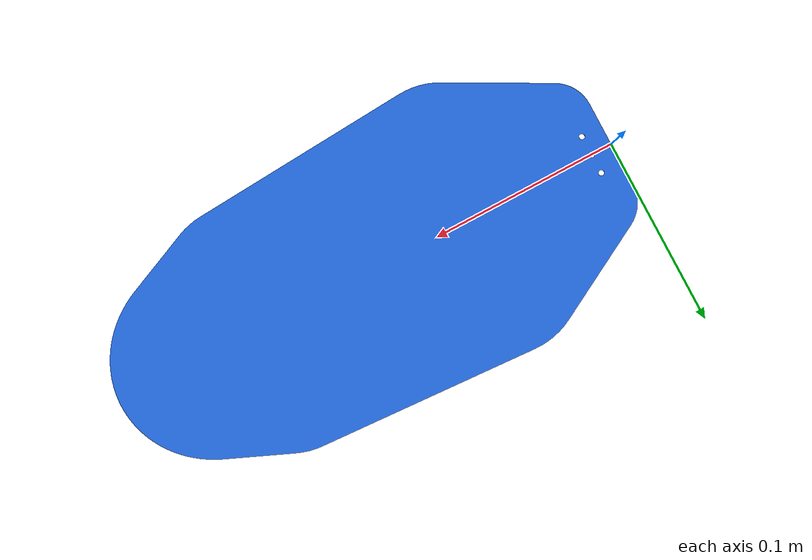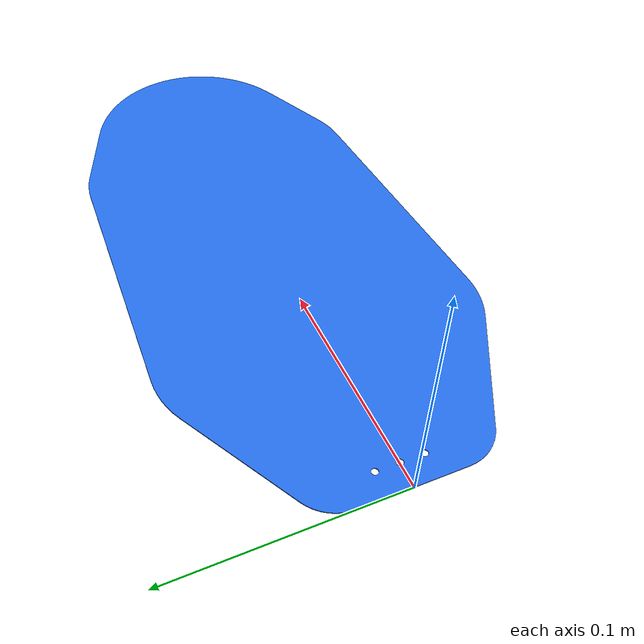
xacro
<?xml version="1.0"?>
<robot name="flipper_demo">

  <!-- Stationary reference -->
  <link name="base_link"/>

  <!-- Yaw pivot -->
  <link name="yaw_link"/>

  <joint name="flipper_yaw_joint" type="revolute">
    <parent link="base_link"/>
    <child link="yaw_link"/>
    <origin xyz="0 0 0" rpy="0 0 0"/>
    <axis xyz="0 0 1"/>
    <limit lower="-3.14159" upper="3.14159"
           effort="10" velocity="2"/>
  </joint>

  <!-- Roll pivot + mesh -->
  <link name="flipper_link">
    <visual>
      <!-- Keep zero if STL origin is your desired pivot -->
      <origin xyz="0 0 0" rpy="0 0 0"/>
      <geometry>
        <mesh filename="package://crab_sim/meshes/flipper.stl"
              scale="0.001 0.001 0.001"/>
      </geometry>
      <material name="blue">
        <color rgba="0.15 0.45 0.95 1"/>
      </material>
    </visual>
  </link>

  <joint name="flipper_roll_joint" type="revolute">
    <parent link="yaw_link"/>
    <child link="flipper_link"/>
    <origin xyz="0 0 0" rpy="0 0 0"/>
    <axis xyz="1 0 0"/>
    <limit lower="-1.5708" upper="1.5708"
           effort="10" velocity="2"/>
  </joint>

</robot>
